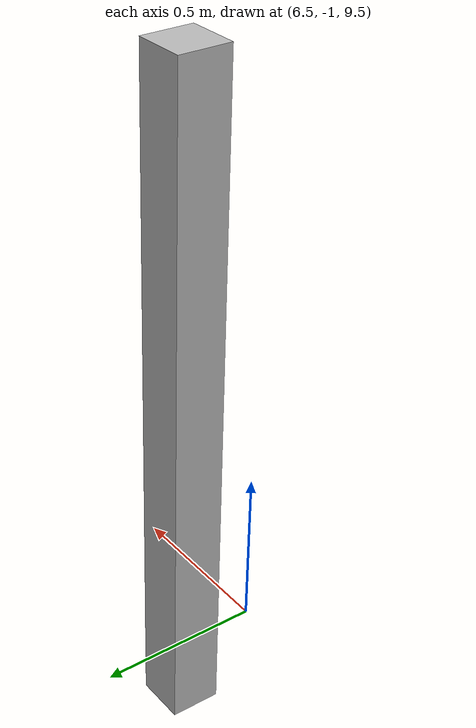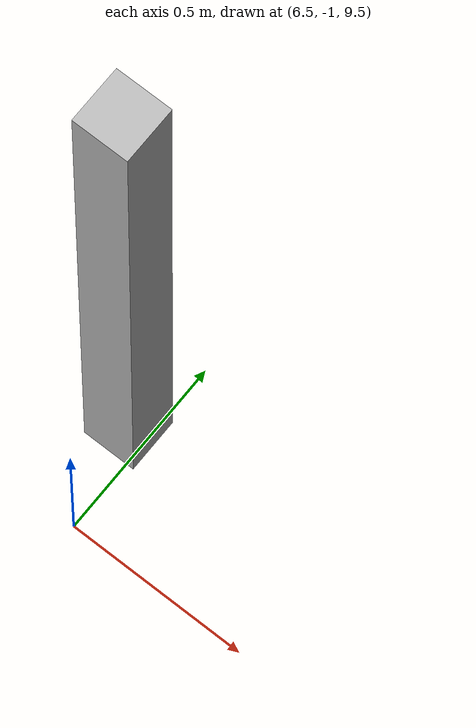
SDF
<sdf version="1.7">
 <world name="default">
  <model name="orthogonal_747_2.000.15_TS">
   <static>1</static>
   <link name="z_link_6_2_6">
    <inertial>
     <mass>1</mass>
     <inertia>
      <ixx>0.166667</ixx>
      <ixy>0</ixy>
      <ixz>0</ixz>
      <iyy>0.166667</iyy>
      <iyz>0</iyz>
      <izz>0.166667</izz>
     </inertia>
    </inertial>
    <pose>12.9 4.3 12.9 0 -0 0</pose>
    <visual name="visual_0">
     <laser_retro>5888</laser_retro>
     <geometry><box><size>0.15 1e-06 2</size></box></geometry>
     <material>
      <script><name>Gazebo/Grey</name><uri>file://media/materials/scripts/gazebo.material</uri></script>
      <shader type="pixel"><normal_map>__default__</normal_map></shader>
      <ambient>0.678 0.498 0.659 1</ambient>
      <diffuse>0.7 0.7 0.7 1</diffuse>
      <specular>0.01 0.01 0.01 1</specular>
      <emissive>0 0 0 1</emissive>
     </material>
     <pose>0 -0.075 0 0 -0 0</pose>
     <transparency>1</transparency>
    </visual>
    <visual name="visual_1">
     <laser_retro>5889</laser_retro>
     <geometry><box><size>0.15 1e-06 2</size></box></geometry>
     <material>
      <script><name>Gazebo/Grey</name><uri>file://media/materials/scripts/gazebo.material</uri></script>
      <shader type="pixel"><normal_map>__default__</normal_map></shader>
      <ambient>0.447 0.624 0.812 1</ambient>
      <diffuse>0.7 0.7 0.7 1</diffuse>
      <specular>0.01 0.01 0.01 1</specular>
      <emissive>0 0 0 1</emissive>
     </material>
     <pose>0 0.075 0 0 -0 0</pose>
     <transparency>1</transparency>
    </visual>
    <visual name="visual_2">
     <laser_retro>5890</laser_retro>
     <geometry><box><size>0.15 0.15 1e-06</size></box></geometry>
     <material>
      <script><name>Gazebo/Grey</name><uri>file://media/materials/scripts/gazebo.material</uri></script>
      <shader type="pixel"><normal_map>__default__</normal_map></shader>
      <ambient>0.988 0.686 0.243 1</ambient>
      <diffuse>0.7 0.7 0.7 1</diffuse>
      <specular>0.01 0.01 0.01 1</specular>
      <emissive>0 0 0 1</emissive>
     </material>
     <pose>0 0 -1 0 -0 0</pose>
     <transparency>1</transparency>
    </visual>
    <visual name="visual_3">
     <laser_retro>5891</laser_retro>
     <geometry><box><size>1e-06 0.15 2</size></box></geometry>
     <material>
      <script><name>Gazebo/Grey</name><uri>file://media/materials/scripts/gazebo.material</uri></script>
      <shader type="pixel"><normal_map>__default__</normal_map></shader>
      <ambient>0.988 0.914 0.31 1</ambient>
      <diffuse>0.7 0.7 0.7 1</diffuse>
      <specular>0.01 0.01 0.01 1</specular>
      <emissive>0 0 0 1</emissive>
     </material>
     <pose>0.075 0 0 0 -0 0</pose>
     <transparency>1</transparency>
    </visual>
    <visual name="visual_4">
     <laser_retro>5892</laser_retro>
     <geometry><box><size>0.15 0.15 1e-06</size></box></geometry>
     <material>
      <script><name>Gazebo/Grey</name><uri>file://media/materials/scripts/gazebo.material</uri></script>
      <shader type="pixel"><normal_map>__default__</normal_map></shader>
      <ambient>0.937 0.161 0.161 1</ambient>
      <diffuse>0.7 0.7 0.7 1</diffuse>
      <specular>0.01 0.01 0.01 1</specular>
      <emissive>0 0 0 1</emissive>
     </material>
     <pose>0 0 1 0 -0 0</pose>
     <transparency>1</transparency>
    </visual>
    <visual name="visual_5">
     <laser_retro>5893</laser_retro>
     <geometry><box><size>1e-06 0.15 2</size></box></geometry>
     <material>
      <script><name>Gazebo/Grey</name><uri>file://media/materials/scripts/gazebo.material</uri></script>
      <shader type="pixel"><normal_map>__default__</normal_map></shader>
      <ambient>0.541 0.886 0.204 1</ambient>
      <diffuse>0.7 0.7 0.7 1</diffuse>
      <specular>0.01 0.01 0.01 1</specular>
      <emissive>0 0 0 1</emissive>
     </material>
     <pose>-0.075 0 0 0 -0 0</pose>
     <transparency>1</transparency>
    </visual>
    <visual name="visual_texture">
     <geometry><box><size>0.149985 0.149985 1.9998</size></box></geometry>
     <material>
      <script>
       <uri>model://BASE_MODELS/simple_block_v2_textured/materials/scripts</uri>
       <uri>model://BASE_MODELS/simple_block_v2_textured/materials/textures</uri>
       <name>metal</name>
      </script>
     </material>
     <laser_retro>5894</laser_retro>
    </visual>
    <collision name="collision">
     <geometry><box><size>0.15 0.15 2</size></box></geometry>
     <surface>
      <friction>
       <ode><mu>1</mu><mu2>1</mu2><fdir1>0 0 0</fdir1><slip1>0</slip1><slip2>0</slip2></ode>
       <torsional>
        <coefficient>1</coefficient>
        <patch_radius>0</patch_radius>
        <surface_radius>0</surface_radius>
        <use_patch_radius>1</use_patch_radius>
        <ode><slip>0</slip></ode>
       </torsional>
      </friction>
      <bounce><restitution_coefficient>0</restitution_coefficient><threshold>1e+06</threshold></bounce>
      <contact>
       <collide_without_contact>0</collide_without_contact>
       <collide_without_contact_bitmask>1</collide_without_contact_bitmask>
       <collide_bitmask>1</collide_bitmask>
       <ode>
        <soft_cfm>0</soft_cfm>
        <soft_erp>0.2</soft_erp>
        <kp>1e+13</kp>
        <kd>1</kd>
        <max_vel>0.01</max_vel>
        <min_depth>0</min_depth>
       </ode>
       <bullet>
        <split_impulse>1</split_impulse>
        <split_impulse_penetration_threshold>-0.01</split_impulse_penetration_threshold>
        <soft_cfm>0</soft_cfm>
        <soft_erp>0.2</soft_erp>
        <kp>1e+13</kp>
        <kd>1</kd>
       </bullet>
      </contact>
     </surface>
    </collision>
   </link>
   <pose>-6.47624 -5 -2.5 0 -0 0</pose>
  </model>
 </world>
</sdf>
